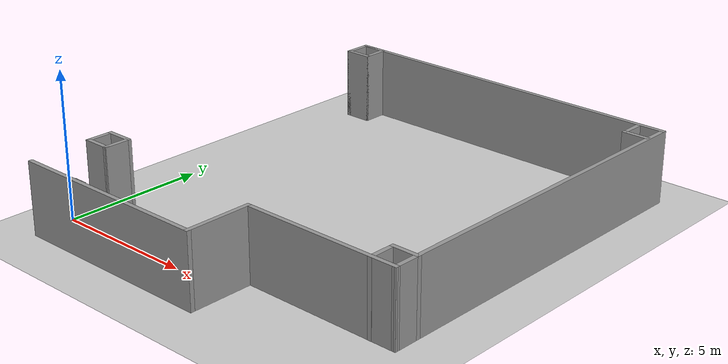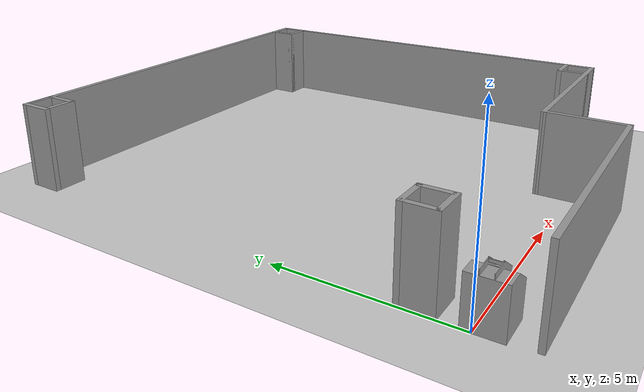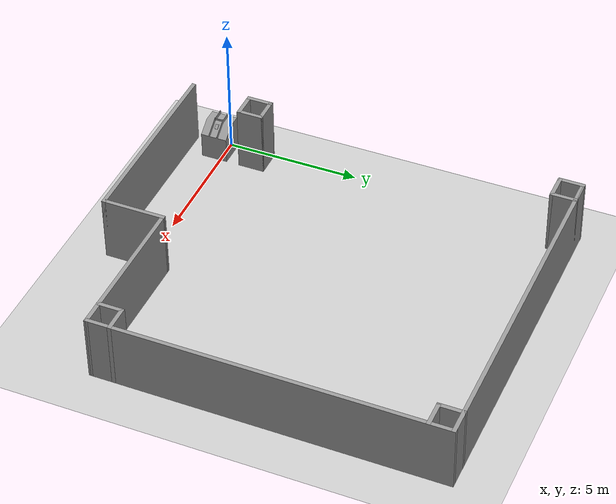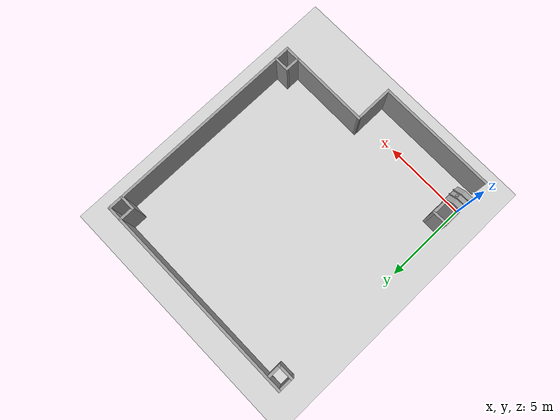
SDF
<sdf version="1.7">
 <world name="default">
  <light name="sun" type="directional">
   <pose>0 0 10 0 -0 0</pose>
   <diffuse>0.8 0.8 0.8 1</diffuse>
   <specular>0.2 0.2 0.2 1</specular>
   <attenuation>
    <range>1000</range>
    <constant>0.9</constant>
    <linear>0.01</linear>
    <quadratic>0.001</quadratic>
   </attenuation>
   <direction>-0.5 0.1 -0.9</direction>
   <spot><inner_angle>0</inner_angle><outer_angle>0</outer_angle><falloff>0</falloff></spot>
  </light>
  <model name="ground_plane">
   <static>1</static>
   <link name="link">
    <collision name="collision">
     <geometry><plane><normal>0 0 1</normal><size>100 100</size></plane></geometry>
     <surface>
      <contact><collide_bitmask>65535</collide_bitmask></contact>
      <friction><ode><mu>100</mu><mu2>50</mu2></ode></friction>
     </surface>
    </collision>
    <visual name="visual">
     <cast_shadows>0</cast_shadows>
     <geometry><plane><normal>0 0 1</normal><size>100 100</size></plane></geometry>
     <material>
      <script><uri>file://media/materials/scripts/gazebo.material</uri><name>Gazebo/Grey</name></script>
     </material>
    </visual>
   </link>
  </model>
  <gravity>0 0 -9.8</gravity>
  <magnetic_field>6e-06 2.3e-05 -4.2e-05</magnetic_field>
  <atmosphere type="adiabatic"/>
  <physics type="ode">
   <max_step_size>0.001</max_step_size>
   <real_time_factor>1</real_time_factor>
   <real_time_update_rate>1000</real_time_update_rate>
  </physics>
  <scene><ambient>0.4 0.4 0.4 1</ambient><background>0.7 0.7 0.7 1</background><shadows>1</shadows></scene>
  <spherical_coordinates>
   <surface_model>EARTH_WGS84</surface_model>
   <latitude_deg>0</latitude_deg>
   <longitude_deg>0</longitude_deg>
   <elevation>0</elevation>
   <heading_deg>0</heading_deg>
  </spherical_coordinates>
  <model name="bookstackmap">
   <pose>6.42472 6.1198 0 0 -0 0</pose>
   <link name="Wall_100">
    <collision name="Wall_100_Collision">
     <geometry><box><size>1 0.15 2.5</size></box></geometry>
     <pose>0 0 1.25 0 -0 0</pose>
    </collision>
    <visual name="Wall_100_Visual">
     <pose>0 0 1.25 0 -0 0</pose>
     <geometry><box><size>1 0.15 2.5</size></box></geometry>
     <material>
      <script><uri>file://media/materials/scripts/gazebo.material</uri><name>Gazebo/Grey</name></script>
      <ambient>1 1 1 1</ambient>
     </material>
     <meta><layer>0</layer></meta>
    </visual>
    <pose>-5.95017 6.6677 0 0 -0 3.14159</pose>
   </link>
   <link name="Wall_103">
    <collision name="Wall_103_Collision">
     <geometry><box><size>1 0.15 2.5</size></box></geometry>
     <pose>0 0 1.25 0 -0 0</pose>
    </collision>
    <visual name="Wall_103_Visual">
     <pose>0 0 1.25 0 -0 0</pose>
     <geometry><box><size>1 0.15 2.5</size></box></geometry>
     <material>
      <script><uri>file://media/materials/scripts/gazebo.material</uri><name>Gazebo/Grey</name></script>
      <ambient>1 1 1 1</ambient>
     </material>
     <meta><layer>0</layer></meta>
    </visual>
    <pose>5.52483 7.0927 0 0 -0 -1.5708</pose>
   </link>
   <link name="Wall_104">
    <collision name="Wall_104_Collision">
     <geometry><box><size>1 0.15 2.5</size></box></geometry>
     <pose>0 0 1.25 0 -0 0</pose>
    </collision>
    <visual name="Wall_104_Visual">
     <pose>0 0 1.25 0 -0 0</pose>
     <geometry><box><size>1 0.15 2.5</size></box></geometry>
     <material>
      <script><uri>file://media/materials/scripts/gazebo.material</uri><name>Gazebo/Grey</name></script>
      <ambient>1 1 1 1</ambient>
     </material>
     <meta><layer>0</layer></meta>
    </visual>
    <pose>5.94983 6.6677 0 0 -0 0</pose>
   </link>
   <link name="Wall_107">
    <collision name="Wall_107_Collision">
     <geometry><box><size>1 0.15 2.5</size></box></geometry>
     <pose>0 0 1.25 0 -0 0</pose>
    </collision>
    <visual name="Wall_107_Visual">
     <pose>0 0 1.25 0 -0 0</pose>
     <geometry><box><size>1 0.15 2.5</size></box></geometry>
     <material>
      <script><uri>file://media/materials/scripts/gazebo.material</uri><name>Gazebo/Grey</name></script>
      <ambient>1 1 1 1</ambient>
     </material>
     <meta><layer>0</layer></meta>
    </visual>
    <pose>5.94983 -4.4423 0 0 -0 3.14159</pose>
   </link>
   <link name="Wall_108">
    <collision name="Wall_108_Collision">
     <geometry><box><size>1 0.15 2.5</size></box></geometry>
     <pose>0 0 1.25 0 -0 0</pose>
    </collision>
    <visual name="Wall_108_Visual">
     <pose>0 0 1.25 0 -0 0</pose>
     <geometry><box><size>1 0.15 2.5</size></box></geometry>
     <material>
      <script><uri>file://media/materials/scripts/gazebo.material</uri><name>Gazebo/Grey</name></script>
      <ambient>1 1 1 1</ambient>
     </material>
     <meta><layer>0</layer></meta>
    </visual>
    <pose>5.52483 -4.8673 0 0 -0 -1.5708</pose>
   </link>
   <link name="Wall_110">
    <collision name="Wall_110_Collision">
     <geometry><box><size>1 0.15 2.5</size></box></geometry>
     <pose>0 0 1.25 0 -0 0</pose>
    </collision>
    <visual name="Wall_110_Visual">
     <pose>0 0 1.25 0 -0 0</pose>
     <geometry><box><size>1 0.15 2.5</size></box></geometry>
     <material>
      <script><uri>file://media/materials/scripts/gazebo.material</uri><name>Gazebo/Grey</name></script>
      <ambient>1 1 1 1</ambient>
     </material>
     <meta><layer>0</layer></meta>
    </visual>
    <pose>-6.37517 7.0927 0 0 -0 -1.5708</pose>
   </link>
   <link name="Wall_78">
    <collision name="Wall_78_Collision">
     <geometry><box><size>12.9 0.15 2.5</size></box></geometry>
     <pose>0 0 1.25 0 -0 0</pose>
    </collision>
    <visual name="Wall_78_Visual">
     <pose>0 0 1.25 0 -0 0</pose>
     <geometry><box><size>12.9 0.15 2.5</size></box></geometry>
     <material>
      <script><uri>file://media/materials/scripts/gazebo.material</uri><name>Gazebo/Grey</name></script>
      <ambient>1 1 1 1</ambient>
     </material>
     <meta><layer>0</layer></meta>
    </visual>
    <pose>-0.000166 7.5177 0 0 -0 0</pose>
   </link>
   <link name="Wall_85">
    <collision name="Wall_85_Collision">
     <geometry><box><size>12.96 0.15 2.5</size></box></geometry>
     <pose>0 0 1.25 0 -0 0</pose>
    </collision>
    <visual name="Wall_85_Visual">
     <pose>0 0 1.25 0 -0 0</pose>
     <geometry><box><size>12.96 0.15 2.5</size></box></geometry>
     <material>
      <script><uri>file://media/materials/scripts/gazebo.material</uri><name>Gazebo/Grey</name></script>
      <ambient>1 1 1 1</ambient>
     </material>
     <meta><layer>0</layer></meta>
    </visual>
    <pose>6.37483 1.1127 0 0 -0 -1.5708</pose>
   </link>
   <link name="Wall_87">
    <collision name="Wall_87_Collision">
     <geometry><box><size>5.70826 0.15 2.5</size></box></geometry>
     <pose>0 0 1.25 0 -0 0</pose>
    </collision>
    <visual name="Wall_87_Visual">
     <pose>0 0 1.25 0 -0 0</pose>
     <geometry><box><size>5.70826 0.15 2.5</size></box></geometry>
     <material>
      <script><uri>file://media/materials/scripts/gazebo.material</uri><name>Gazebo/Grey</name></script>
      <ambient>1 1 1 1</ambient>
     </material>
     <meta><layer>0</layer></meta>
    </visual>
    <pose>3.59573 -5.28 0 0 -0 3.13717</pose>
   </link>
   <link name="Wall_89">
    <collision name="Wall_89_Collision">
     <geometry><box><size>2.4 0.15 2.5</size></box></geometry>
     <pose>0 0 1.25 0 -0 0</pose>
    </collision>
    <visual name="Wall_89_Visual">
     <pose>0 0 1.25 0 -0 0</pose>
     <geometry><box><size>2.4 0.15 2.5</size></box></geometry>
     <material>
      <script><uri>file://media/materials/scripts/gazebo.material</uri><name>Gazebo/Grey</name></script>
      <ambient>1 1 1 1</ambient>
     </material>
     <meta><layer>0</layer></meta>
    </visual>
    <pose>0.816634 -6.3927 0 0 -0 -1.5708</pose>
   </link>
   <link name="Wall_91">
    <collision name="Wall_91_Collision">
     <geometry><box><size>7.25 0.15 2.5</size></box></geometry>
     <pose>0 0 1.25 0 -0 0</pose>
    </collision>
    <visual name="Wall_91_Visual">
     <pose>0 0 1.25 0 -0 0</pose>
     <geometry><box><size>7.25 0.15 2.5</size></box></geometry>
     <material>
      <script><uri>file://media/materials/scripts/gazebo.material</uri><name>Gazebo/Grey</name></script>
      <ambient>1 1 1 1</ambient>
     </material>
     <meta><layer>0</layer></meta>
    </visual>
    <pose>-2.73337 -7.5177 0 0 -0 3.14159</pose>
   </link>
   <link name="Wall_93">
    <collision name="Wall_93_Collision">
     <geometry><box><size>1 0.15 2.5</size></box></geometry>
     <pose>0 0 1.25 0 -0 0</pose>
    </collision>
    <visual name="Wall_93_Visual">
     <pose>0 0 1.25 0 -0 0</pose>
     <geometry><box><size>1 0.15 2.5</size></box></geometry>
     <material>
      <script><uri>file://media/materials/scripts/gazebo.material</uri><name>Gazebo/Grey</name></script>
      <ambient>1 1 1 1</ambient>
     </material>
     <meta><layer>0</layer></meta>
    </visual>
    <pose>-5.95017 -5.2923 0 0 -0 0</pose>
   </link>
   <link name="Wall_94">
    <collision name="Wall_94_Collision">
     <geometry><box><size>1 0.15 2.5</size></box></geometry>
     <pose>0 0 1.25 0 -0 0</pose>
    </collision>
    <visual name="Wall_94_Visual">
     <pose>0 0 1.25 0 -0 0</pose>
     <geometry><box><size>1 0.15 2.5</size></box></geometry>
     <material>
      <script><uri>file://media/materials/scripts/gazebo.material</uri><name>Gazebo/Grey</name></script>
      <ambient>1 1 1 1</ambient>
     </material>
     <meta><layer>0</layer></meta>
    </visual>
    <pose>-5.52517 -4.8673 0 0 -0 1.5708</pose>
   </link>
   <link name="Wall_95">
    <collision name="Wall_95_Collision">
     <geometry><box><size>1 0.15 2.5</size></box></geometry>
     <pose>0 0 1.25 0 -0 0</pose>
    </collision>
    <visual name="Wall_95_Visual">
     <pose>0 0 1.25 0 -0 0</pose>
     <geometry><box><size>1 0.15 2.5</size></box></geometry>
     <material>
      <script><uri>file://media/materials/scripts/gazebo.material</uri><name>Gazebo/Grey</name></script>
      <ambient>1 1 1 1</ambient>
     </material>
     <meta><layer>0</layer></meta>
    </visual>
    <pose>-5.95017 -4.4423 0 0 -0 3.14159</pose>
   </link>
   <link name="Wall_96">
    <collision name="Wall_96_Collision">
     <geometry><box><size>1 0.15 2.5</size></box></geometry>
     <pose>0 0 1.25 0 -0 0</pose>
    </collision>
    <visual name="Wall_96_Visual">
     <pose>0 0 1.25 0 -0 0</pose>
     <geometry><box><size>1 0.15 2.5</size></box></geometry>
     <material>
      <script><uri>file://media/materials/scripts/gazebo.material</uri><name>Gazebo/Grey</name></script>
      <ambient>1 1 1 1</ambient>
     </material>
     <meta><layer>0</layer></meta>
    </visual>
    <pose>-6.37517 -4.8673 0 0 -0 -1.5708</pose>
   </link>
   <link name="Wall_98">
    <collision name="Wall_98_Collision">
     <geometry><box><size>1 0.15 2.5</size></box></geometry>
     <pose>0 0 1.25 0 -0 0</pose>
    </collision>
    <visual name="Wall_98_Visual">
     <pose>0 0 1.25 0 -0 0</pose>
     <geometry><box><size>1 0.15 2.5</size></box></geometry>
     <material>
      <script><uri>file://media/materials/scripts/gazebo.material</uri><name>Gazebo/Grey</name></script>
      <ambient>1 1 1 1</ambient>
     </material>
     <meta><layer>0</layer></meta>
    </visual>
    <pose>-5.95017 7.5177 0 0 -0 0</pose>
   </link>
   <link name="Wall_99">
    <collision name="Wall_99_Collision">
     <geometry><box><size>1 0.15 2.5</size></box></geometry>
     <pose>0 0 1.25 0 -0 0</pose>
    </collision>
    <visual name="Wall_99_Visual">
     <pose>0 0 1.25 0 -0 0</pose>
     <geometry><box><size>1 0.15 2.5</size></box></geometry>
     <material>
      <script><uri>file://media/materials/scripts/gazebo.material</uri><name>Gazebo/Grey</name></script>
      <ambient>1 1 1 1</ambient>
     </material>
     <meta><layer>0</layer></meta>
    </visual>
    <pose>-5.52517 7.0927 0 0 -0 -1.5708</pose>
   </link>
   <static>1</static>
  </model>
  <model name="slide50">
   <link name="link_0">
    <inertial>
     <mass>10</mass>
     <inertia>
      <ixx>0.166667</ixx>
      <ixy>0</ixy>
      <ixz>0</ixz>
      <iyy>0.166667</iyy>
      <iyz>0</iyz>
      <izz>0.166667</izz>
     </inertia>
    </inertial>
    <pose>0 0 0 0 0 -1.57</pose>
    <visual name="visual">
     <geometry>
      <mesh>
       <uri>/home/joshua/project3/src/book_sorting_system/bss_gazebo/models/STL/slide2.STL</uri>
       <scale>0.001 0.001 0.001</scale>
      </mesh>
     </geometry>
     <material>
      <lighting>1</lighting>
      <script><uri>file://media/materials/scripts/gazebo.material</uri><name>Gazebo/Grey</name></script>
      <shader type="pixel"><normal_map>__default__</normal_map></shader>
      <ambient>0.3 0.3 0.3 1</ambient>
      <diffuse>0.7 0.7 0.7 1</diffuse>
      <specular>0.01 0.01 0.01 1</specular>
      <emissive>0 0 0 1</emissive>
     </material>
    </visual>
    <collision name="collision">
     <geometry>
      <mesh>
       <uri>/home/joshua/project3/src/book_sorting_system/bss_gazebo/models/STL/slide2.STL</uri>
       <scale>0.001 0.001 0.001</scale>
      </mesh>
     </geometry>
     <surface>
      <friction>
       <ode><mu>0.5</mu><mu2>0.5</mu2><fdir1>0 0 0</fdir1><slip1>0</slip1><slip2>0</slip2></ode>
       <torsional>
        <coefficient>1</coefficient>
        <patch_radius>0</patch_radius>
        <surface_radius>0</surface_radius>
        <use_patch_radius>1</use_patch_radius>
        <ode><slip>0</slip></ode>
       </torsional>
      </friction>
      <bounce><restitution_coefficient>0</restitution_coefficient><threshold>1e+06</threshold></bounce>
      <contact>
       <collide_without_contact>0</collide_without_contact>
       <collide_without_contact_bitmask>1</collide_without_contact_bitmask>
       <collide_bitmask>1</collide_bitmask>
       <ode>
        <soft_cfm>0</soft_cfm>
        <soft_erp>0.2</soft_erp>
        <kp>1e+13</kp>
        <kd>1</kd>
        <max_vel>0.01</max_vel>
        <min_depth>0</min_depth>
       </ode>
       <bullet>
        <split_impulse>1</split_impulse>
        <split_impulse_penetration_threshold>-0.01</split_impulse_penetration_threshold>
        <soft_cfm>0</soft_cfm>
        <soft_erp>0.2</soft_erp>
        <kp>1e+13</kp>
        <kd>1</kd>
       </bullet>
      </contact>
     </surface>
    </collision>
   </link>
   <static>1</static>
   <pose>-0.024549 0.259712 0 0 -0 0</pose>
  </model>
  <model name="bookver5">
   <link name="link_0">
    <inertial>
     <mass>0.5</mass>
     <inertia>
      <ixx>0.166667</ixx>
      <ixy>0</ixy>
      <ixz>0</ixz>
      <iyy>0.166667</iyy>
      <iyz>0</iyz>
      <izz>0.166667</izz>
     </inertia>
    </inertial>
    <pose>-0 0 -0 0 0.66 0</pose>
    <visual name="visual">
     <geometry>
      <mesh>
       <uri>/home/joshua/project3/src/book_sorting_system/bss_gazebo/models/STL/bookver5.STL</uri>
       <scale>0.001 0.001 0.001</scale>
      </mesh>
     </geometry>
     <material>
      <lighting>1</lighting>
      <script><uri>file://media/materials/scripts/gazebo.material</uri><name>Gazebo/Grey</name></script>
      <shader type="pixel"><normal_map>__default__</normal_map></shader>
      <ambient>0.3 0.3 0.3 1</ambient>
      <diffuse>0.7 0.7 0.7 1</diffuse>
      <specular>0.01 0.01 0.01 1</specular>
      <emissive>0 0 0 1</emissive>
     </material>
    </visual>
    <collision name="collision">
     <geometry>
      <mesh>
       <uri>/home/joshua/project3/src/book_sorting_system/bss_gazebo/models/STL/bookver5.STL</uri>
       <scale>0.001 0.001 0.001</scale>
      </mesh>
     </geometry>
     <surface>
      <friction>
       <ode><mu>1</mu><mu2>1</mu2><fdir1>0 0 0</fdir1><slip1>0</slip1><slip2>0</slip2></ode>
       <torsional>
        <coefficient>1</coefficient>
        <patch_radius>0</patch_radius>
        <surface_radius>0</surface_radius>
        <use_patch_radius>1</use_patch_radius>
        <ode><slip>0</slip></ode>
       </torsional>
      </friction>
      <bounce><restitution_coefficient>0</restitution_coefficient><threshold>1e+06</threshold></bounce>
      <contact>
       <collide_without_contact>0</collide_without_contact>
       <collide_without_contact_bitmask>1</collide_without_contact_bitmask>
       <collide_bitmask>1</collide_bitmask>
       <ode>
        <soft_cfm>0</soft_cfm>
        <soft_erp>0.2</soft_erp>
        <kp>1e+13</kp>
        <kd>1</kd>
        <max_vel>0.01</max_vel>
        <min_depth>0</min_depth>
       </ode>
       <bullet>
        <split_impulse>1</split_impulse>
        <split_impulse_penetration_threshold>-0.01</split_impulse_penetration_threshold>
        <soft_cfm>0</soft_cfm>
        <soft_erp>0.2</soft_erp>
        <kp>1e+13</kp>
        <kd>1</kd>
       </bullet>
      </contact>
     </surface>
    </collision>
   </link>
   <static>0</static>
   <pose>0.65 -0.25 1.26 0 -0 0</pose>
  </model>
 </world>
</sdf>
